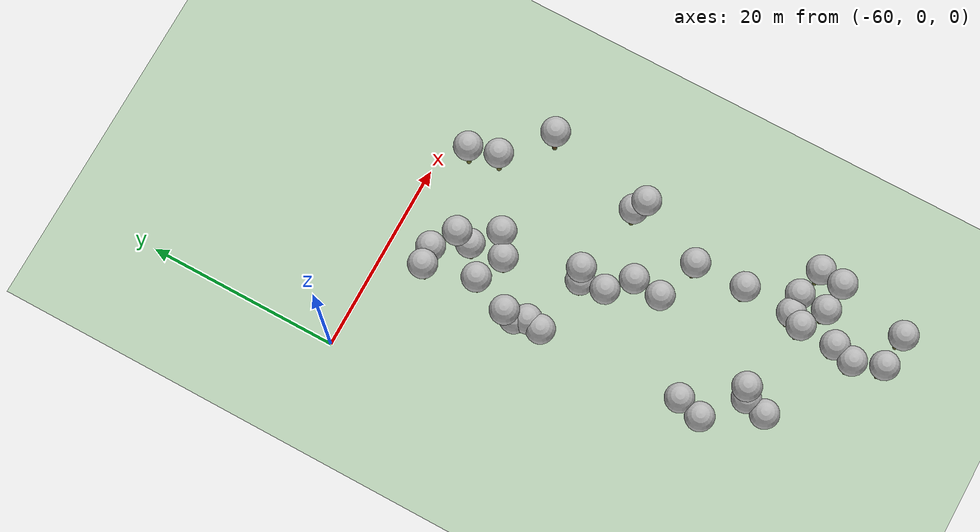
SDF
<sdf version="1.5">
 <world name="default">
  <model name="tree_simple481">
   <static>1</static>
   <link name="link">
    <pose>0 0 0.1 0 -0 0</pose>
    <collision name="collision_trunk">
     <pose>0 0 2 0 -0 0</pose>
     <geometry><cylinder><radius>0.25</radius><length>4</length></cylinder></geometry>
    </collision>
    <collision name="collision_treetop">
     <pose>0 0 5.2 0 -0 0</pose>
     <geometry><sphere><radius>1.5</radius></sphere></geometry>
    </collision>
    <visual name="trunk">
     <pose>0 0 2 0 -0 0</pose>
     <geometry><cylinder><radius>0.25</radius><length>4</length></cylinder></geometry>
     <material>
      <script>
       <uri>model://tree_simple/scripts</uri>
       <uri>model://tree_simple/materials/textures</uri>
       <name>TreeSimple/Trunk</name>
      </script>
     </material>
    </visual>
    <visual name="treetop">
     <pose>0 0 5.2 0 -0 0</pose>
     <geometry><sphere><radius>1.5</radius></sphere></geometry>
     <material>
      <script>
       <uri>model://tree_simple/scripts</uri>
       <uri>model://tree_simple/materials/textures</uri>
       <name>TreeSimple/Treetop</name>
      </script>
     </material>
    </visual>
   </link>
   <pose>-37.2553351017 -39.4739685818 -1.9470463064464087 0 -0 0</pose>
  </model>
  <model name="tree_simple438">
   <static>1</static>
   <link name="link">
    <pose>0 0 0.1 0 -0 0</pose>
    <collision name="collision_trunk">
     <pose>0 0 2 0 -0 0</pose>
     <geometry><cylinder><radius>0.25</radius><length>4</length></cylinder></geometry>
    </collision>
    <collision name="collision_treetop">
     <pose>0 0 5.2 0 -0 0</pose>
     <geometry><sphere><radius>1.5</radius></sphere></geometry>
    </collision>
    <visual name="trunk">
     <pose>0 0 2 0 -0 0</pose>
     <geometry><cylinder><radius>0.25</radius><length>4</length></cylinder></geometry>
     <material>
      <script>
       <uri>model://tree_simple/scripts</uri>
       <uri>model://tree_simple/materials/textures</uri>
       <name>TreeSimple/Trunk</name>
      </script>
     </material>
    </visual>
    <visual name="treetop">
     <pose>0 0 5.2 0 -0 0</pose>
     <geometry><sphere><radius>1.5</radius></sphere></geometry>
     <material>
      <script>
       <uri>model://tree_simple/scripts</uri>
       <uri>model://tree_simple/materials/textures</uri>
       <name>TreeSimple/Treetop</name>
      </script>
     </material>
    </visual>
   </link>
   <pose>-34.2898013361 -38.0039942016 -2.7187779943834265 0 -0 0</pose>
  </model>
  <model name="tree_simple434">
   <static>1</static>
   <link name="link">
    <pose>0 0 0.1 0 -0 0</pose>
    <collision name="collision_trunk">
     <pose>0 0 2 0 -0 0</pose>
     <geometry><cylinder><radius>0.25</radius><length>4</length></cylinder></geometry>
    </collision>
    <collision name="collision_treetop">
     <pose>0 0 5.2 0 -0 0</pose>
     <geometry><sphere><radius>1.5</radius></sphere></geometry>
    </collision>
    <visual name="trunk">
     <pose>0 0 2 0 -0 0</pose>
     <geometry><cylinder><radius>0.25</radius><length>4</length></cylinder></geometry>
     <material>
      <script>
       <uri>model://tree_simple/scripts</uri>
       <uri>model://tree_simple/materials/textures</uri>
       <name>TreeSimple/Trunk</name>
      </script>
     </material>
    </visual>
    <visual name="treetop">
     <pose>0 0 5.2 0 -0 0</pose>
     <geometry><sphere><radius>1.5</radius></sphere></geometry>
     <material>
      <script>
       <uri>model://tree_simple/scripts</uri>
       <uri>model://tree_simple/materials/textures</uri>
       <name>TreeSimple/Treetop</name>
      </script>
     </material>
    </visual>
   </link>
   <pose>-43.1297442783 -18.5304452852 -3.433818590743421 0 -0 0</pose>
  </model>
  <model name="tree_simple416">
   <static>1</static>
   <link name="link">
    <pose>0 0 0.1 0 -0 0</pose>
    <collision name="collision_trunk">
     <pose>0 0 2 0 -0 0</pose>
     <geometry><cylinder><radius>0.25</radius><length>4</length></cylinder></geometry>
    </collision>
    <collision name="collision_treetop">
     <pose>0 0 5.2 0 -0 0</pose>
     <geometry><sphere><radius>1.5</radius></sphere></geometry>
    </collision>
    <visual name="trunk">
     <pose>0 0 2 0 -0 0</pose>
     <geometry><cylinder><radius>0.25</radius><length>4</length></cylinder></geometry>
     <material>
      <script>
       <uri>model://tree_simple/scripts</uri>
       <uri>model://tree_simple/materials/textures</uri>
       <name>TreeSimple/Trunk</name>
      </script>
     </material>
    </visual>
    <visual name="treetop">
     <pose>0 0 5.2 0 -0 0</pose>
     <geometry><sphere><radius>1.5</radius></sphere></geometry>
     <material>
      <script>
       <uri>model://tree_simple/scripts</uri>
       <uri>model://tree_simple/materials/textures</uri>
       <name>TreeSimple/Treetop</name>
      </script>
     </material>
    </visual>
   </link>
   <pose>-31.2795871631 -38.7286210433 -2.2797461474916063 0 -0 0</pose>
  </model>
  <model name="tree_simple411">
   <static>1</static>
   <link name="link">
    <pose>0 0 0.1 0 -0 0</pose>
    <collision name="collision_trunk">
     <pose>0 0 2 0 -0 0</pose>
     <geometry><cylinder><radius>0.25</radius><length>4</length></cylinder></geometry>
    </collision>
    <collision name="collision_treetop">
     <pose>0 0 5.2 0 -0 0</pose>
     <geometry><sphere><radius>1.5</radius></sphere></geometry>
    </collision>
    <visual name="trunk">
     <pose>0 0 2 0 -0 0</pose>
     <geometry><cylinder><radius>0.25</radius><length>4</length></cylinder></geometry>
     <material>
      <script>
       <uri>model://tree_simple/scripts</uri>
       <uri>model://tree_simple/materials/textures</uri>
       <name>TreeSimple/Trunk</name>
      </script>
     </material>
    </visual>
    <visual name="treetop">
     <pose>0 0 5.2 0 -0 0</pose>
     <geometry><sphere><radius>1.5</radius></sphere></geometry>
     <material>
      <script>
       <uri>model://tree_simple/scripts</uri>
       <uri>model://tree_simple/materials/textures</uri>
       <name>TreeSimple/Treetop</name>
      </script>
     </material>
    </visual>
   </link>
   <pose>-32.1703266052 -41.1753069034 -0.18952364685583878 0 -0 0</pose>
  </model>
  <model name="tree_simple404">
   <static>1</static>
   <link name="link">
    <pose>0 0 0.1 0 -0 0</pose>
    <collision name="collision_trunk">
     <pose>0 0 2 0 -0 0</pose>
     <geometry><cylinder><radius>0.25</radius><length>4</length></cylinder></geometry>
    </collision>
    <collision name="collision_treetop">
     <pose>0 0 5.2 0 -0 0</pose>
     <geometry><sphere><radius>1.5</radius></sphere></geometry>
    </collision>
    <visual name="trunk">
     <pose>0 0 2 0 -0 0</pose>
     <geometry><cylinder><radius>0.25</radius><length>4</length></cylinder></geometry>
     <material>
      <script>
       <uri>model://tree_simple/scripts</uri>
       <uri>model://tree_simple/materials/textures</uri>
       <name>TreeSimple/Trunk</name>
      </script>
     </material>
    </visual>
    <visual name="treetop">
     <pose>0 0 5.2 0 -0 0</pose>
     <geometry><sphere><radius>1.5</radius></sphere></geometry>
     <material>
      <script>
       <uri>model://tree_simple/scripts</uri>
       <uri>model://tree_simple/materials/textures</uri>
       <name>TreeSimple/Treetop</name>
      </script>
     </material>
    </visual>
   </link>
   <pose>-45.4192895763 -37.6687183978 -0.5562170778456272 0 -0 0</pose>
  </model>
  <model name="tree_simple403">
   <static>1</static>
   <link name="link">
    <pose>0 0 0.1 0 -0 0</pose>
    <collision name="collision_trunk">
     <pose>0 0 2 0 -0 0</pose>
     <geometry><cylinder><radius>0.25</radius><length>4</length></cylinder></geometry>
    </collision>
    <collision name="collision_treetop">
     <pose>0 0 5.2 0 -0 0</pose>
     <geometry><sphere><radius>1.5</radius></sphere></geometry>
    </collision>
    <visual name="trunk">
     <pose>0 0 2 0 -0 0</pose>
     <geometry><cylinder><radius>0.25</radius><length>4</length></cylinder></geometry>
     <material>
      <script>
       <uri>model://tree_simple/scripts</uri>
       <uri>model://tree_simple/materials/textures</uri>
       <name>TreeSimple/Trunk</name>
      </script>
     </material>
    </visual>
    <visual name="treetop">
     <pose>0 0 5.2 0 -0 0</pose>
     <geometry><sphere><radius>1.5</radius></sphere></geometry>
     <material>
      <script>
       <uri>model://tree_simple/scripts</uri>
       <uri>model://tree_simple/materials/textures</uri>
       <name>TreeSimple/Treetop</name>
      </script>
     </material>
    </visual>
   </link>
   <pose>-49.5316989744 -17.555694289 -2.3094742984379524 0 -0 0</pose>
  </model>
  <model name="tree_simple396">
   <static>1</static>
   <link name="link">
    <pose>0 0 0.1 0 -0 0</pose>
    <collision name="collision_trunk">
     <pose>0 0 2 0 -0 0</pose>
     <geometry><cylinder><radius>0.25</radius><length>4</length></cylinder></geometry>
    </collision>
    <collision name="collision_treetop">
     <pose>0 0 5.2 0 -0 0</pose>
     <geometry><sphere><radius>1.5</radius></sphere></geometry>
    </collision>
    <visual name="trunk">
     <pose>0 0 2 0 -0 0</pose>
     <geometry><cylinder><radius>0.25</radius><length>4</length></cylinder></geometry>
     <material>
      <script>
       <uri>model://tree_simple/scripts</uri>
       <uri>model://tree_simple/materials/textures</uri>
       <name>TreeSimple/Trunk</name>
      </script>
     </material>
    </visual>
    <visual name="treetop">
     <pose>0 0 5.2 0 -0 0</pose>
     <geometry><sphere><radius>1.5</radius></sphere></geometry>
     <material>
      <script>
       <uri>model://tree_simple/scripts</uri>
       <uri>model://tree_simple/materials/textures</uri>
       <name>TreeSimple/Treetop</name>
      </script>
     </material>
    </visual>
   </link>
   <pose>-34.4954871255 -19.8377607827 -2.382588960575876 0 -0 0</pose>
  </model>
  <model name="tree_simple375">
   <static>1</static>
   <link name="link">
    <pose>0 0 0.1 0 -0 0</pose>
    <collision name="collision_trunk">
     <pose>0 0 2 0 -0 0</pose>
     <geometry><cylinder><radius>0.25</radius><length>4</length></cylinder></geometry>
    </collision>
    <collision name="collision_treetop">
     <pose>0 0 5.2 0 -0 0</pose>
     <geometry><sphere><radius>1.5</radius></sphere></geometry>
    </collision>
    <visual name="trunk">
     <pose>0 0 2 0 -0 0</pose>
     <geometry><cylinder><radius>0.25</radius><length>4</length></cylinder></geometry>
     <material>
      <script>
       <uri>model://tree_simple/scripts</uri>
       <uri>model://tree_simple/materials/textures</uri>
       <name>TreeSimple/Trunk</name>
      </script>
     </material>
    </visual>
    <visual name="treetop">
     <pose>0 0 5.2 0 -0 0</pose>
     <geometry><sphere><radius>1.5</radius></sphere></geometry>
     <material>
      <script>
       <uri>model://tree_simple/scripts</uri>
       <uri>model://tree_simple/materials/textures</uri>
       <name>TreeSimple/Treetop</name>
      </script>
     </material>
    </visual>
   </link>
   <pose>-48.3845088934 -9.9079742 -0.24865149918121143 0 -0 0</pose>
  </model>
  <model name="tree_simple373">
   <static>1</static>
   <link name="link">
    <pose>0 0 0.1 0 -0 0</pose>
    <collision name="collision_trunk">
     <pose>0 0 2 0 -0 0</pose>
     <geometry><cylinder><radius>0.25</radius><length>4</length></cylinder></geometry>
    </collision>
    <collision name="collision_treetop">
     <pose>0 0 5.2 0 -0 0</pose>
     <geometry><sphere><radius>1.5</radius></sphere></geometry>
    </collision>
    <visual name="trunk">
     <pose>0 0 2 0 -0 0</pose>
     <geometry><cylinder><radius>0.25</radius><length>4</length></cylinder></geometry>
     <material>
      <script>
       <uri>model://tree_simple/scripts</uri>
       <uri>model://tree_simple/materials/textures</uri>
       <name>TreeSimple/Trunk</name>
      </script>
     </material>
    </visual>
    <visual name="treetop">
     <pose>0 0 5.2 0 -0 0</pose>
     <geometry><sphere><radius>1.5</radius></sphere></geometry>
     <material>
      <script>
       <uri>model://tree_simple/scripts</uri>
       <uri>model://tree_simple/materials/textures</uri>
       <name>TreeSimple/Treetop</name>
      </script>
     </material>
    </visual>
   </link>
   <pose>-43.1842610619 -21.2191114712 -1.7011839796284418 0 -0 0</pose>
  </model>
  <model name="tree_simple370">
   <static>1</static>
   <link name="link">
    <pose>0 0 0.1 0 -0 0</pose>
    <collision name="collision_trunk">
     <pose>0 0 2 0 -0 0</pose>
     <geometry><cylinder><radius>0.25</radius><length>4</length></cylinder></geometry>
    </collision>
    <collision name="collision_treetop">
     <pose>0 0 5.2 0 -0 0</pose>
     <geometry><sphere><radius>1.5</radius></sphere></geometry>
    </collision>
    <visual name="trunk">
     <pose>0 0 2 0 -0 0</pose>
     <geometry><cylinder><radius>0.25</radius><length>4</length></cylinder></geometry>
     <material>
      <script>
       <uri>model://tree_simple/scripts</uri>
       <uri>model://tree_simple/materials/textures</uri>
       <name>TreeSimple/Trunk</name>
      </script>
     </material>
    </visual>
    <visual name="treetop">
     <pose>0 0 5.2 0 -0 0</pose>
     <geometry><sphere><radius>1.5</radius></sphere></geometry>
     <material>
      <script>
       <uri>model://tree_simple/scripts</uri>
       <uri>model://tree_simple/materials/textures</uri>
       <name>TreeSimple/Treetop</name>
      </script>
     </material>
    </visual>
   </link>
   <pose>-36.749040883 -27.7198172667 -1.2759646334926118 0 -0 0</pose>
  </model>
  <model name="tree_simple369">
   <static>1</static>
   <link name="link">
    <pose>0 0 0.1 0 -0 0</pose>
    <collision name="collision_trunk">
     <pose>0 0 2 0 -0 0</pose>
     <geometry><cylinder><radius>0.25</radius><length>4</length></cylinder></geometry>
    </collision>
    <collision name="collision_treetop">
     <pose>0 0 5.2 0 -0 0</pose>
     <geometry><sphere><radius>1.5</radius></sphere></geometry>
    </collision>
    <visual name="trunk">
     <pose>0 0 2 0 -0 0</pose>
     <geometry><cylinder><radius>0.25</radius><length>4</length></cylinder></geometry>
     <material>
      <script>
       <uri>model://tree_simple/scripts</uri>
       <uri>model://tree_simple/materials/textures</uri>
       <name>TreeSimple/Trunk</name>
      </script>
     </material>
    </visual>
    <visual name="treetop">
     <pose>0 0 5.2 0 -0 0</pose>
     <geometry><sphere><radius>1.5</radius></sphere></geometry>
     <material>
      <script>
       <uri>model://tree_simple/scripts</uri>
       <uri>model://tree_simple/materials/textures</uri>
       <name>TreeSimple/Treetop</name>
      </script>
     </material>
    </visual>
   </link>
   <pose>-40.8904214301 -23.21757156 -1.7584832306749885 0 -0 0</pose>
  </model>
  <model name="tree_simple341">
   <static>1</static>
   <link name="link">
    <pose>0 0 0.1 0 -0 0</pose>
    <collision name="collision_trunk">
     <pose>0 0 2 0 -0 0</pose>
     <geometry><cylinder><radius>0.25</radius><length>4</length></cylinder></geometry>
    </collision>
    <collision name="collision_treetop">
     <pose>0 0 5.2 0 -0 0</pose>
     <geometry><sphere><radius>1.5</radius></sphere></geometry>
    </collision>
    <visual name="trunk">
     <pose>0 0 2 0 -0 0</pose>
     <geometry><cylinder><radius>0.25</radius><length>4</length></cylinder></geometry>
     <material>
      <script>
       <uri>model://tree_simple/scripts</uri>
       <uri>model://tree_simple/materials/textures</uri>
       <name>TreeSimple/Trunk</name>
      </script>
     </material>
    </visual>
    <visual name="treetop">
     <pose>0 0 5.2 0 -0 0</pose>
     <geometry><sphere><radius>1.5</radius></sphere></geometry>
     <material>
      <script>
       <uri>model://tree_simple/scripts</uri>
       <uri>model://tree_simple/materials/textures</uri>
       <name>TreeSimple/Treetop</name>
      </script>
     </material>
    </visual>
   </link>
   <pose>-49.5073976614 -4.58498276765 -1.1131925603813504 0 -0 0</pose>
  </model>
  <model name="tree_simple326">
   <static>1</static>
   <link name="link">
    <pose>0 0 0.1 0 -0 0</pose>
    <collision name="collision_trunk">
     <pose>0 0 2 0 -0 0</pose>
     <geometry><cylinder><radius>0.25</radius><length>4</length></cylinder></geometry>
    </collision>
    <collision name="collision_treetop">
     <pose>0 0 5.2 0 -0 0</pose>
     <geometry><sphere><radius>1.5</radius></sphere></geometry>
    </collision>
    <visual name="trunk">
     <pose>0 0 2 0 -0 0</pose>
     <geometry><cylinder><radius>0.25</radius><length>4</length></cylinder></geometry>
     <material>
      <script>
       <uri>model://tree_simple/scripts</uri>
       <uri>model://tree_simple/materials/textures</uri>
       <name>TreeSimple/Trunk</name>
      </script>
     </material>
    </visual>
    <visual name="treetop">
     <pose>0 0 5.2 0 -0 0</pose>
     <geometry><sphere><radius>1.5</radius></sphere></geometry>
     <material>
      <script>
       <uri>model://tree_simple/scripts</uri>
       <uri>model://tree_simple/materials/textures</uri>
       <name>TreeSimple/Treetop</name>
      </script>
     </material>
    </visual>
   </link>
   <pose>-44.8519520945 -5.80439962373 -1.7853685009953468 0 -0 0</pose>
  </model>
  <model name="tree_simple323">
   <static>1</static>
   <link name="link">
    <pose>0 0 0.1 0 -0 0</pose>
    <collision name="collision_trunk">
     <pose>0 0 2 0 -0 0</pose>
     <geometry><cylinder><radius>0.25</radius><length>4</length></cylinder></geometry>
    </collision>
    <collision name="collision_treetop">
     <pose>0 0 5.2 0 -0 0</pose>
     <geometry><sphere><radius>1.5</radius></sphere></geometry>
    </collision>
    <visual name="trunk">
     <pose>0 0 2 0 -0 0</pose>
     <geometry><cylinder><radius>0.25</radius><length>4</length></cylinder></geometry>
     <material>
      <script>
       <uri>model://tree_simple/scripts</uri>
       <uri>model://tree_simple/materials/textures</uri>
       <name>TreeSimple/Trunk</name>
      </script>
     </material>
    </visual>
    <visual name="treetop">
     <pose>0 0 5.2 0 -0 0</pose>
     <geometry><sphere><radius>1.5</radius></sphere></geometry>
     <material>
      <script>
       <uri>model://tree_simple/scripts</uri>
       <uri>model://tree_simple/materials/textures</uri>
       <name>TreeSimple/Treetop</name>
      </script>
     </material>
    </visual>
   </link>
   <pose>-44.9542016132 -10.9647646888 -2.2157109299749695 0 -0 0</pose>
  </model>
  <model name="tree_simple318">
   <static>1</static>
   <link name="link">
    <pose>0 0 0.1 0 -0 0</pose>
    <collision name="collision_trunk">
     <pose>0 0 2 0 -0 0</pose>
     <geometry><cylinder><radius>0.25</radius><length>4</length></cylinder></geometry>
    </collision>
    <collision name="collision_treetop">
     <pose>0 0 5.2 0 -0 0</pose>
     <geometry><sphere><radius>1.5</radius></sphere></geometry>
    </collision>
    <visual name="trunk">
     <pose>0 0 2 0 -0 0</pose>
     <geometry><cylinder><radius>0.25</radius><length>4</length></cylinder></geometry>
     <material>
      <script>
       <uri>model://tree_simple/scripts</uri>
       <uri>model://tree_simple/materials/textures</uri>
       <name>TreeSimple/Trunk</name>
      </script>
     </material>
    </visual>
    <visual name="treetop">
     <pose>0 0 5.2 0 -0 0</pose>
     <geometry><sphere><radius>1.5</radius></sphere></geometry>
     <material>
      <script>
       <uri>model://tree_simple/scripts</uri>
       <uri>model://tree_simple/materials/textures</uri>
       <name>TreeSimple/Treetop</name>
      </script>
     </material>
    </visual>
   </link>
   <pose>-35.5307244579 -5.31130875944 -3.42592167680115 0 -0 0</pose>
  </model>
  <model name="tree_simple312">
   <static>1</static>
   <link name="link">
    <pose>0 0 0.1 0 -0 0</pose>
    <collision name="collision_trunk">
     <pose>0 0 2 0 -0 0</pose>
     <geometry><cylinder><radius>0.25</radius><length>4</length></cylinder></geometry>
    </collision>
    <collision name="collision_treetop">
     <pose>0 0 5.2 0 -0 0</pose>
     <geometry><sphere><radius>1.5</radius></sphere></geometry>
    </collision>
    <visual name="trunk">
     <pose>0 0 2 0 -0 0</pose>
     <geometry><cylinder><radius>0.25</radius><length>4</length></cylinder></geometry>
     <material>
      <script>
       <uri>model://tree_simple/scripts</uri>
       <uri>model://tree_simple/materials/textures</uri>
       <name>TreeSimple/Trunk</name>
      </script>
     </material>
    </visual>
    <visual name="treetop">
     <pose>0 0 5.2 0 -0 0</pose>
     <geometry><sphere><radius>1.5</radius></sphere></geometry>
     <material>
      <script>
       <uri>model://tree_simple/scripts</uri>
       <uri>model://tree_simple/materials/textures</uri>
       <name>TreeSimple/Treetop</name>
      </script>
     </material>
    </visual>
   </link>
   <pose>-49.0127914394 -32.4704975261 -2.736446797854141 0 -0 0</pose>
  </model>
  <model name="tree_simple259">
   <static>1</static>
   <link name="link">
    <pose>0 0 0.1 0 -0 0</pose>
    <collision name="collision_trunk">
     <pose>0 0 2 0 -0 0</pose>
     <geometry><cylinder><radius>0.25</radius><length>4</length></cylinder></geometry>
    </collision>
    <collision name="collision_treetop">
     <pose>0 0 5.2 0 -0 0</pose>
     <geometry><sphere><radius>1.5</radius></sphere></geometry>
    </collision>
    <visual name="trunk">
     <pose>0 0 2 0 -0 0</pose>
     <geometry><cylinder><radius>0.25</radius><length>4</length></cylinder></geometry>
     <material>
      <script>
       <uri>model://tree_simple/scripts</uri>
       <uri>model://tree_simple/materials/textures</uri>
       <name>TreeSimple/Trunk</name>
      </script>
     </material>
    </visual>
    <visual name="treetop">
     <pose>0 0 5.2 0 -0 0</pose>
     <geometry><sphere><radius>1.5</radius></sphere></geometry>
     <material>
      <script>
       <uri>model://tree_simple/scripts</uri>
       <uri>model://tree_simple/materials/textures</uri>
       <name>TreeSimple/Treetop</name>
      </script>
     </material>
    </visual>
   </link>
   <pose>-49.2281564384 -15.9494105315 -2.425465683433048 0 -0 0</pose>
  </model>
  <model name="tree_simple250">
   <static>1</static>
   <link name="link">
    <pose>0 0 0.1 0 -0 0</pose>
    <collision name="collision_trunk">
     <pose>0 0 2 0 -0 0</pose>
     <geometry><cylinder><radius>0.25</radius><length>4</length></cylinder></geometry>
    </collision>
    <collision name="collision_treetop">
     <pose>0 0 5.2 0 -0 0</pose>
     <geometry><sphere><radius>1.5</radius></sphere></geometry>
    </collision>
    <visual name="trunk">
     <pose>0 0 2 0 -0 0</pose>
     <geometry><cylinder><radius>0.25</radius><length>4</length></cylinder></geometry>
     <material>
      <script>
       <uri>model://tree_simple/scripts</uri>
       <uri>model://tree_simple/materials/textures</uri>
       <name>TreeSimple/Trunk</name>
      </script>
     </material>
    </visual>
    <visual name="treetop">
     <pose>0 0 5.2 0 -0 0</pose>
     <geometry><sphere><radius>1.5</radius></sphere></geometry>
     <material>
      <script>
       <uri>model://tree_simple/scripts</uri>
       <uri>model://tree_simple/materials/textures</uri>
       <name>TreeSimple/Treetop</name>
      </script>
     </material>
    </visual>
   </link>
   <pose>-33.6030138898 -48.597626204 -1.3131958951922758 0 -0 0</pose>
  </model>
  <model name="tree_simple241">
   <static>1</static>
   <link name="link">
    <pose>0 0 0.1 0 -0 0</pose>
    <collision name="collision_trunk">
     <pose>0 0 2 0 -0 0</pose>
     <geometry><cylinder><radius>0.25</radius><length>4</length></cylinder></geometry>
    </collision>
    <collision name="collision_treetop">
     <pose>0 0 5.2 0 -0 0</pose>
     <geometry><sphere><radius>1.5</radius></sphere></geometry>
    </collision>
    <visual name="trunk">
     <pose>0 0 2 0 -0 0</pose>
     <geometry><cylinder><radius>0.25</radius><length>4</length></cylinder></geometry>
     <material>
      <script>
       <uri>model://tree_simple/scripts</uri>
       <uri>model://tree_simple/materials/textures</uri>
       <name>TreeSimple/Trunk</name>
      </script>
     </material>
    </visual>
    <visual name="treetop">
     <pose>0 0 5.2 0 -0 0</pose>
     <geometry><sphere><radius>1.5</radius></sphere></geometry>
     <material>
      <script>
       <uri>model://tree_simple/scripts</uri>
       <uri>model://tree_simple/materials/textures</uri>
       <name>TreeSimple/Treetop</name>
      </script>
     </material>
    </visual>
   </link>
   <pose>-37.439891657 -43.2397532509 -1.8814058872319956 0 -0 0</pose>
  </model>
  <model name="tree_simple240">
   <static>1</static>
   <link name="link">
    <pose>0 0 0.1 0 -0 0</pose>
    <collision name="collision_trunk">
     <pose>0 0 2 0 -0 0</pose>
     <geometry><cylinder><radius>0.25</radius><length>4</length></cylinder></geometry>
    </collision>
    <collision name="collision_treetop">
     <pose>0 0 5.2 0 -0 0</pose>
     <geometry><sphere><radius>1.5</radius></sphere></geometry>
    </collision>
    <visual name="trunk">
     <pose>0 0 2 0 -0 0</pose>
     <geometry><cylinder><radius>0.25</radius><length>4</length></cylinder></geometry>
     <material>
      <script>
       <uri>model://tree_simple/scripts</uri>
       <uri>model://tree_simple/materials/textures</uri>
       <name>TreeSimple/Trunk</name>
      </script>
     </material>
    </visual>
    <visual name="treetop">
     <pose>0 0 5.2 0 -0 0</pose>
     <geometry><sphere><radius>1.5</radius></sphere></geometry>
     <material>
      <script>
       <uri>model://tree_simple/scripts</uri>
       <uri>model://tree_simple/materials/textures</uri>
       <name>TreeSimple/Treetop</name>
      </script>
     </material>
    </visual>
   </link>
   <pose>-49.7673729573 -14.7908164176 -2.695695063934254 0 -0 0</pose>
  </model>
  <model name="tree_simple239">
   <static>1</static>
   <link name="link">
    <pose>0 0 0.1 0 -0 0</pose>
    <collision name="collision_trunk">
     <pose>0 0 2 0 -0 0</pose>
     <geometry><cylinder><radius>0.25</radius><length>4</length></cylinder></geometry>
    </collision>
    <collision name="collision_treetop">
     <pose>0 0 5.2 0 -0 0</pose>
     <geometry><sphere><radius>1.5</radius></sphere></geometry>
    </collision>
    <visual name="trunk">
     <pose>0 0 2 0 -0 0</pose>
     <geometry><cylinder><radius>0.25</radius><length>4</length></cylinder></geometry>
     <material>
      <script>
       <uri>model://tree_simple/scripts</uri>
       <uri>model://tree_simple/materials/textures</uri>
       <name>TreeSimple/Trunk</name>
      </script>
     </material>
    </visual>
    <visual name="treetop">
     <pose>0 0 5.2 0 -0 0</pose>
     <geometry><sphere><radius>1.5</radius></sphere></geometry>
     <material>
      <script>
       <uri>model://tree_simple/scripts</uri>
       <uri>model://tree_simple/materials/textures</uri>
       <name>TreeSimple/Treetop</name>
      </script>
     </material>
    </visual>
   </link>
   <pose>-44.9803872855 -7.28495240751 -3.4444647623183897 0 -0 0</pose>
  </model>
  <model name="tree_simple221">
   <static>1</static>
   <link name="link">
    <pose>0 0 0.1 0 -0 0</pose>
    <collision name="collision_trunk">
     <pose>0 0 2 0 -0 0</pose>
     <geometry><cylinder><radius>0.25</radius><length>4</length></cylinder></geometry>
    </collision>
    <collision name="collision_treetop">
     <pose>0 0 5.2 0 -0 0</pose>
     <geometry><sphere><radius>1.5</radius></sphere></geometry>
    </collision>
    <visual name="trunk">
     <pose>0 0 2 0 -0 0</pose>
     <geometry><cylinder><radius>0.25</radius><length>4</length></cylinder></geometry>
     <material>
      <script>
       <uri>model://tree_simple/scripts</uri>
       <uri>model://tree_simple/materials/textures</uri>
       <name>TreeSimple/Trunk</name>
      </script>
     </material>
    </visual>
    <visual name="treetop">
     <pose>0 0 5.2 0 -0 0</pose>
     <geometry><sphere><radius>1.5</radius></sphere></geometry>
     <material>
      <script>
       <uri>model://tree_simple/scripts</uri>
       <uri>model://tree_simple/materials/textures</uri>
       <name>TreeSimple/Treetop</name>
      </script>
     </material>
    </visual>
   </link>
   <pose>-33.630014063 -20.7003393039 -0.7650774698486267 0 -0 0</pose>
  </model>
  <model name="tree_simple220">
   <static>1</static>
   <link name="link">
    <pose>0 0 0.1 0 -0 0</pose>
    <collision name="collision_trunk">
     <pose>0 0 2 0 -0 0</pose>
     <geometry><cylinder><radius>0.25</radius><length>4</length></cylinder></geometry>
    </collision>
    <collision name="collision_treetop">
     <pose>0 0 5.2 0 -0 0</pose>
     <geometry><sphere><radius>1.5</radius></sphere></geometry>
    </collision>
    <visual name="trunk">
     <pose>0 0 2 0 -0 0</pose>
     <geometry><cylinder><radius>0.25</radius><length>4</length></cylinder></geometry>
     <material>
      <script>
       <uri>model://tree_simple/scripts</uri>
       <uri>model://tree_simple/materials/textures</uri>
       <name>TreeSimple/Trunk</name>
      </script>
     </material>
    </visual>
    <visual name="treetop">
     <pose>0 0 5.2 0 -0 0</pose>
     <geometry><sphere><radius>1.5</radius></sphere></geometry>
     <material>
      <script>
       <uri>model://tree_simple/scripts</uri>
       <uri>model://tree_simple/materials/textures</uri>
       <name>TreeSimple/Treetop</name>
      </script>
     </material>
    </visual>
   </link>
   <pose>-36.5535815793 -2.43279627312 -2.597853903834613 0 -0 0</pose>
  </model>
  <model name="tree_simple212">
   <static>1</static>
   <link name="link">
    <pose>0 0 0.1 0 -0 0</pose>
    <collision name="collision_trunk">
     <pose>0 0 2 0 -0 0</pose>
     <geometry><cylinder><radius>0.25</radius><length>4</length></cylinder></geometry>
    </collision>
    <collision name="collision_treetop">
     <pose>0 0 5.2 0 -0 0</pose>
     <geometry><sphere><radius>1.5</radius></sphere></geometry>
    </collision>
    <visual name="trunk">
     <pose>0 0 2 0 -0 0</pose>
     <geometry><cylinder><radius>0.25</radius><length>4</length></cylinder></geometry>
     <material>
      <script>
       <uri>model://tree_simple/scripts</uri>
       <uri>model://tree_simple/materials/textures</uri>
       <name>TreeSimple/Trunk</name>
      </script>
     </material>
    </visual>
    <visual name="treetop">
     <pose>0 0 5.2 0 -0 0</pose>
     <geometry><sphere><radius>1.5</radius></sphere></geometry>
     <material>
      <script>
       <uri>model://tree_simple/scripts</uri>
       <uri>model://tree_simple/materials/textures</uri>
       <name>TreeSimple/Treetop</name>
      </script>
     </material>
    </visual>
   </link>
   <pose>-40.8079801591 -26.1075975904 -3.1977271151964115 0 -0 0</pose>
  </model>
  <model name="tree_simple193">
   <static>1</static>
   <link name="link">
    <pose>0 0 0.1 0 -0 0</pose>
    <collision name="collision_trunk">
     <pose>0 0 2 0 -0 0</pose>
     <geometry><cylinder><radius>0.25</radius><length>4</length></cylinder></geometry>
    </collision>
    <collision name="collision_treetop">
     <pose>0 0 5.2 0 -0 0</pose>
     <geometry><sphere><radius>1.5</radius></sphere></geometry>
    </collision>
    <visual name="trunk">
     <pose>0 0 2 0 -0 0</pose>
     <geometry><cylinder><radius>0.25</radius><length>4</length></cylinder></geometry>
     <material>
      <script>
       <uri>model://tree_simple/scripts</uri>
       <uri>model://tree_simple/materials/textures</uri>
       <name>TreeSimple/Trunk</name>
      </script>
     </material>
    </visual>
    <visual name="treetop">
     <pose>0 0 5.2 0 -0 0</pose>
     <geometry><sphere><radius>1.5</radius></sphere></geometry>
     <material>
      <script>
       <uri>model://tree_simple/scripts</uri>
       <uri>model://tree_simple/materials/textures</uri>
       <name>TreeSimple/Treetop</name>
      </script>
     </material>
    </visual>
   </link>
   <pose>-38.0891263237 -45.387736402 -1.8171692727688127 0 -0 0</pose>
  </model>
  <model name="tree_simple176">
   <static>1</static>
   <link name="link">
    <pose>0 0 0.1 0 -0 0</pose>
    <collision name="collision_trunk">
     <pose>0 0 2 0 -0 0</pose>
     <geometry><cylinder><radius>0.25</radius><length>4</length></cylinder></geometry>
    </collision>
    <collision name="collision_treetop">
     <pose>0 0 5.2 0 -0 0</pose>
     <geometry><sphere><radius>1.5</radius></sphere></geometry>
    </collision>
    <visual name="trunk">
     <pose>0 0 2 0 -0 0</pose>
     <geometry><cylinder><radius>0.25</radius><length>4</length></cylinder></geometry>
     <material>
      <script>
       <uri>model://tree_simple/scripts</uri>
       <uri>model://tree_simple/materials/textures</uri>
       <name>TreeSimple/Trunk</name>
      </script>
     </material>
    </visual>
    <visual name="treetop">
     <pose>0 0 5.2 0 -0 0</pose>
     <geometry><sphere><radius>1.5</radius></sphere></geometry>
     <material>
      <script>
       <uri>model://tree_simple/scripts</uri>
       <uri>model://tree_simple/materials/textures</uri>
       <name>TreeSimple/Treetop</name>
      </script>
     </material>
    </visual>
   </link>
   <pose>-34.4242902166 -40.9558999471 -2.854761052741191 0 -0 0</pose>
  </model>
  <model name="tree_simple172">
   <static>1</static>
   <link name="link">
    <pose>0 0 0.1 0 -0 0</pose>
    <collision name="collision_trunk">
     <pose>0 0 2 0 -0 0</pose>
     <geometry><cylinder><radius>0.25</radius><length>4</length></cylinder></geometry>
    </collision>
    <collision name="collision_treetop">
     <pose>0 0 5.2 0 -0 0</pose>
     <geometry><sphere><radius>1.5</radius></sphere></geometry>
    </collision>
    <visual name="trunk">
     <pose>0 0 2 0 -0 0</pose>
     <geometry><cylinder><radius>0.25</radius><length>4</length></cylinder></geometry>
     <material>
      <script>
       <uri>model://tree_simple/scripts</uri>
       <uri>model://tree_simple/materials/textures</uri>
       <name>TreeSimple/Trunk</name>
      </script>
     </material>
    </visual>
    <visual name="treetop">
     <pose>0 0 5.2 0 -0 0</pose>
     <geometry><sphere><radius>1.5</radius></sphere></geometry>
     <material>
      <script>
       <uri>model://tree_simple/scripts</uri>
       <uri>model://tree_simple/materials/textures</uri>
       <name>TreeSimple/Treetop</name>
      </script>
     </material>
    </visual>
   </link>
   <pose>-36.3388025574 -38.096874475 -2.753768616206281 0 -0 0</pose>
  </model>
  <model name="tree_simple171">
   <static>1</static>
   <link name="link">
    <pose>0 0 0.1 0 -0 0</pose>
    <collision name="collision_trunk">
     <pose>0 0 2 0 -0 0</pose>
     <geometry><cylinder><radius>0.25</radius><length>4</length></cylinder></geometry>
    </collision>
    <collision name="collision_treetop">
     <pose>0 0 5.2 0 -0 0</pose>
     <geometry><sphere><radius>1.5</radius></sphere></geometry>
    </collision>
    <visual name="trunk">
     <pose>0 0 2 0 -0 0</pose>
     <geometry><cylinder><radius>0.25</radius><length>4</length></cylinder></geometry>
     <material>
      <script>
       <uri>model://tree_simple/scripts</uri>
       <uri>model://tree_simple/materials/textures</uri>
       <name>TreeSimple/Trunk</name>
      </script>
     </material>
    </visual>
    <visual name="treetop">
     <pose>0 0 5.2 0 -0 0</pose>
     <geometry><sphere><radius>1.5</radius></sphere></geometry>
     <material>
      <script>
       <uri>model://tree_simple/scripts</uri>
       <uri>model://tree_simple/materials/textures</uri>
       <name>TreeSimple/Treetop</name>
      </script>
     </material>
    </visual>
   </link>
   <pose>-47.4177148869 -4.27301626353 -1.8974958840043337 0 -0 0</pose>
  </model>
  <model name="tree_simple146">
   <static>1</static>
   <link name="link">
    <pose>0 0 0.1 0 -0 0</pose>
    <collision name="collision_trunk">
     <pose>0 0 2 0 -0 0</pose>
     <geometry><cylinder><radius>0.25</radius><length>4</length></cylinder></geometry>
    </collision>
    <collision name="collision_treetop">
     <pose>0 0 5.2 0 -0 0</pose>
     <geometry><sphere><radius>1.5</radius></sphere></geometry>
    </collision>
    <visual name="trunk">
     <pose>0 0 2 0 -0 0</pose>
     <geometry><cylinder><radius>0.25</radius><length>4</length></cylinder></geometry>
     <material>
      <script>
       <uri>model://tree_simple/scripts</uri>
       <uri>model://tree_simple/materials/textures</uri>
       <name>TreeSimple/Trunk</name>
      </script>
     </material>
    </visual>
    <visual name="treetop">
     <pose>0 0 5.2 0 -0 0</pose>
     <geometry><sphere><radius>1.5</radius></sphere></geometry>
     <material>
      <script>
       <uri>model://tree_simple/scripts</uri>
       <uri>model://tree_simple/materials/textures</uri>
       <name>TreeSimple/Treetop</name>
      </script>
     </material>
    </visual>
   </link>
   <pose>-42.8686467761 -9.68210025238 -1.4889904831940308 0 -0 0</pose>
  </model>
  <model name="tree_simple129">
   <static>1</static>
   <link name="link">
    <pose>0 0 0.1 0 -0 0</pose>
    <collision name="collision_trunk">
     <pose>0 0 2 0 -0 0</pose>
     <geometry><cylinder><radius>0.25</radius><length>4</length></cylinder></geometry>
    </collision>
    <collision name="collision_treetop">
     <pose>0 0 5.2 0 -0 0</pose>
     <geometry><sphere><radius>1.5</radius></sphere></geometry>
    </collision>
    <visual name="trunk">
     <pose>0 0 2 0 -0 0</pose>
     <geometry><cylinder><radius>0.25</radius><length>4</length></cylinder></geometry>
     <material>
      <script>
       <uri>model://tree_simple/scripts</uri>
       <uri>model://tree_simple/materials/textures</uri>
       <name>TreeSimple/Trunk</name>
      </script>
     </material>
    </visual>
    <visual name="treetop">
     <pose>0 0 5.2 0 -0 0</pose>
     <geometry><sphere><radius>1.5</radius></sphere></geometry>
     <material>
      <script>
       <uri>model://tree_simple/scripts</uri>
       <uri>model://tree_simple/materials/textures</uri>
       <name>TreeSimple/Treetop</name>
      </script>
     </material>
    </visual>
   </link>
   <pose>-46.082766629 -38.1150560833 -2.2467055731711536 0 -0 0</pose>
  </model>
  <model name="tree_simple91">
   <static>1</static>
   <link name="link">
    <pose>0 0 0.1 0 -0 0</pose>
    <collision name="collision_trunk">
     <pose>0 0 2 0 -0 0</pose>
     <geometry><cylinder><radius>0.25</radius><length>4</length></cylinder></geometry>
    </collision>
    <collision name="collision_treetop">
     <pose>0 0 5.2 0 -0 0</pose>
     <geometry><sphere><radius>1.5</radius></sphere></geometry>
    </collision>
    <visual name="trunk">
     <pose>0 0 2 0 -0 0</pose>
     <geometry><cylinder><radius>0.25</radius><length>4</length></cylinder></geometry>
     <material>
      <script>
       <uri>model://tree_simple/scripts</uri>
       <uri>model://tree_simple/materials/textures</uri>
       <name>TreeSimple/Trunk</name>
      </script>
     </material>
    </visual>
    <visual name="treetop">
     <pose>0 0 5.2 0 -0 0</pose>
     <geometry><sphere><radius>1.5</radius></sphere></geometry>
     <material>
      <script>
       <uri>model://tree_simple/scripts</uri>
       <uri>model://tree_simple/materials/textures</uri>
       <name>TreeSimple/Treetop</name>
      </script>
     </material>
    </visual>
   </link>
   <pose>-49.8341450527 -13.7707098392 -0.7648140191122961 0 -0 0</pose>
  </model>
  <model name="tree_simple83">
   <static>1</static>
   <link name="link">
    <pose>0 0 0.1 0 -0 0</pose>
    <collision name="collision_trunk">
     <pose>0 0 2 0 -0 0</pose>
     <geometry><cylinder><radius>0.25</radius><length>4</length></cylinder></geometry>
    </collision>
    <collision name="collision_treetop">
     <pose>0 0 5.2 0 -0 0</pose>
     <geometry><sphere><radius>1.5</radius></sphere></geometry>
    </collision>
    <visual name="trunk">
     <pose>0 0 2 0 -0 0</pose>
     <geometry><cylinder><radius>0.25</radius><length>4</length></cylinder></geometry>
     <material>
      <script>
       <uri>model://tree_simple/scripts</uri>
       <uri>model://tree_simple/materials/textures</uri>
       <name>TreeSimple/Trunk</name>
      </script>
     </material>
    </visual>
    <visual name="treetop">
     <pose>0 0 5.2 0 -0 0</pose>
     <geometry><sphere><radius>1.5</radius></sphere></geometry>
     <material>
      <script>
       <uri>model://tree_simple/scripts</uri>
       <uri>model://tree_simple/materials/textures</uri>
       <name>TreeSimple/Treetop</name>
      </script>
     </material>
    </visual>
   </link>
   <pose>-49.6712926958 -35.0160914231 -2.895954518730755 0 -0 0</pose>
  </model>
  <model name="tree_simple75">
   <static>1</static>
   <link name="link">
    <pose>0 0 0.1 0 -0 0</pose>
    <collision name="collision_trunk">
     <pose>0 0 2 0 -0 0</pose>
     <geometry><cylinder><radius>0.25</radius><length>4</length></cylinder></geometry>
    </collision>
    <collision name="collision_treetop">
     <pose>0 0 5.2 0 -0 0</pose>
     <geometry><sphere><radius>1.5</radius></sphere></geometry>
    </collision>
    <visual name="trunk">
     <pose>0 0 2 0 -0 0</pose>
     <geometry><cylinder><radius>0.25</radius><length>4</length></cylinder></geometry>
     <material>
      <script>
       <uri>model://tree_simple/scripts</uri>
       <uri>model://tree_simple/materials/textures</uri>
       <name>TreeSimple/Trunk</name>
      </script>
     </material>
    </visual>
    <visual name="treetop">
     <pose>0 0 5.2 0 -0 0</pose>
     <geometry><sphere><radius>1.5</radius></sphere></geometry>
     <material>
      <script>
       <uri>model://tree_simple/scripts</uri>
       <uri>model://tree_simple/materials/textures</uri>
       <name>TreeSimple/Treetop</name>
      </script>
     </material>
    </visual>
   </link>
   <pose>-42.3546026357 -18.1931921773 -1.6831326529548007 0 -0 0</pose>
  </model>
  <model name="tree_simple67">
   <static>1</static>
   <link name="link">
    <pose>0 0 0.1 0 -0 0</pose>
    <collision name="collision_trunk">
     <pose>0 0 2 0 -0 0</pose>
     <geometry><cylinder><radius>0.25</radius><length>4</length></cylinder></geometry>
    </collision>
    <collision name="collision_treetop">
     <pose>0 0 5.2 0 -0 0</pose>
     <geometry><sphere><radius>1.5</radius></sphere></geometry>
    </collision>
    <visual name="trunk">
     <pose>0 0 2 0 -0 0</pose>
     <geometry><cylinder><radius>0.25</radius><length>4</length></cylinder></geometry>
     <material>
      <script>
       <uri>model://tree_simple/scripts</uri>
       <uri>model://tree_simple/materials/textures</uri>
       <name>TreeSimple/Trunk</name>
      </script>
     </material>
    </visual>
    <visual name="treetop">
     <pose>0 0 5.2 0 -0 0</pose>
     <geometry><sphere><radius>1.5</radius></sphere></geometry>
     <material>
      <script>
       <uri>model://tree_simple/scripts</uri>
       <uri>model://tree_simple/materials/textures</uri>
       <name>TreeSimple/Treetop</name>
      </script>
     </material>
    </visual>
   </link>
   <pose>-36.6256451993 -48.3909294088 -3.136340590289539 0 -0 0</pose>
  </model>
  <model name="tree_simple62">
   <static>1</static>
   <link name="link">
    <pose>0 0 0.1 0 -0 0</pose>
    <collision name="collision_trunk">
     <pose>0 0 2 0 -0 0</pose>
     <geometry><cylinder><radius>0.25</radius><length>4</length></cylinder></geometry>
    </collision>
    <collision name="collision_treetop">
     <pose>0 0 5.2 0 -0 0</pose>
     <geometry><sphere><radius>1.5</radius></sphere></geometry>
    </collision>
    <visual name="trunk">
     <pose>0 0 2 0 -0 0</pose>
     <geometry><cylinder><radius>0.25</radius><length>4</length></cylinder></geometry>
     <material>
      <script>
       <uri>model://tree_simple/scripts</uri>
       <uri>model://tree_simple/materials/textures</uri>
       <name>TreeSimple/Trunk</name>
      </script>
     </material>
    </visual>
    <visual name="treetop">
     <pose>0 0 5.2 0 -0 0</pose>
     <geometry><sphere><radius>1.5</radius></sphere></geometry>
     <material>
      <script>
       <uri>model://tree_simple/scripts</uri>
       <uri>model://tree_simple/materials/textures</uri>
       <name>TreeSimple/Treetop</name>
      </script>
     </material>
    </visual>
   </link>
   <pose>-31.7033167044 -9.58889275635 -0.640445837948175 0 -0 0</pose>
  </model>
  <model name="tree_simple41">
   <static>1</static>
   <link name="link">
    <pose>0 0 0.1 0 -0 0</pose>
    <collision name="collision_trunk">
     <pose>0 0 2 0 -0 0</pose>
     <geometry><cylinder><radius>0.25</radius><length>4</length></cylinder></geometry>
    </collision>
    <collision name="collision_treetop">
     <pose>0 0 5.2 0 -0 0</pose>
     <geometry><sphere><radius>1.5</radius></sphere></geometry>
    </collision>
    <visual name="trunk">
     <pose>0 0 2 0 -0 0</pose>
     <geometry><cylinder><radius>0.25</radius><length>4</length></cylinder></geometry>
     <material>
      <script>
       <uri>model://tree_simple/scripts</uri>
       <uri>model://tree_simple/materials/textures</uri>
       <name>TreeSimple/Trunk</name>
      </script>
     </material>
    </visual>
    <visual name="treetop">
     <pose>0 0 5.2 0 -0 0</pose>
     <geometry><sphere><radius>1.5</radius></sphere></geometry>
     <material>
      <script>
       <uri>model://tree_simple/scripts</uri>
       <uri>model://tree_simple/materials/textures</uri>
       <name>TreeSimple/Treetop</name>
      </script>
     </material>
    </visual>
   </link>
   <pose>-46.5792527836 -40.3552194107 -2.4531233507144057 0 -0 0</pose>
  </model>
  <model name="tree_simple15">
   <static>1</static>
   <link name="link">
    <pose>0 0 0.1 0 -0 0</pose>
    <collision name="collision_trunk">
     <pose>0 0 2 0 -0 0</pose>
     <geometry><cylinder><radius>0.25</radius><length>4</length></cylinder></geometry>
    </collision>
    <collision name="collision_treetop">
     <pose>0 0 5.2 0 -0 0</pose>
     <geometry><sphere><radius>1.5</radius></sphere></geometry>
    </collision>
    <visual name="trunk">
     <pose>0 0 2 0 -0 0</pose>
     <geometry><cylinder><radius>0.25</radius><length>4</length></cylinder></geometry>
     <material>
      <script>
       <uri>model://tree_simple/scripts</uri>
       <uri>model://tree_simple/materials/textures</uri>
       <name>TreeSimple/Trunk</name>
      </script>
     </material>
    </visual>
    <visual name="treetop">
     <pose>0 0 5.2 0 -0 0</pose>
     <geometry><sphere><radius>1.5</radius></sphere></geometry>
     <material>
      <script>
       <uri>model://tree_simple/scripts</uri>
       <uri>model://tree_simple/materials/textures</uri>
       <name>TreeSimple/Treetop</name>
      </script>
     </material>
    </visual>
   </link>
   <pose>-36.3232609195 -32.993952596 -2.252478358706093 0 -0 0</pose>
  </model>
  <model name="ground_plane">
   <static>true</static>
   <link name="link">
    <collision name="collision">
     <geometry><plane><normal>0 0 1</normal><size>250 250</size></plane></geometry>
     <surface><friction><ode><mu>1</mu><mu2>1</mu2></ode></friction></surface>
    </collision>
    <visual name="grass">
     <cast_shadows>false</cast_shadows>
     <geometry><plane><normal>0 0 1</normal><size>150 250</size></plane></geometry>
     <material>
      <script><uri>file://media/materials/scripts/Gazebo.material</uri><name>Gazebo/Grass</name></script>
     </material>
    </visual>
   </link>
  </model>
 </world>
</sdf>
